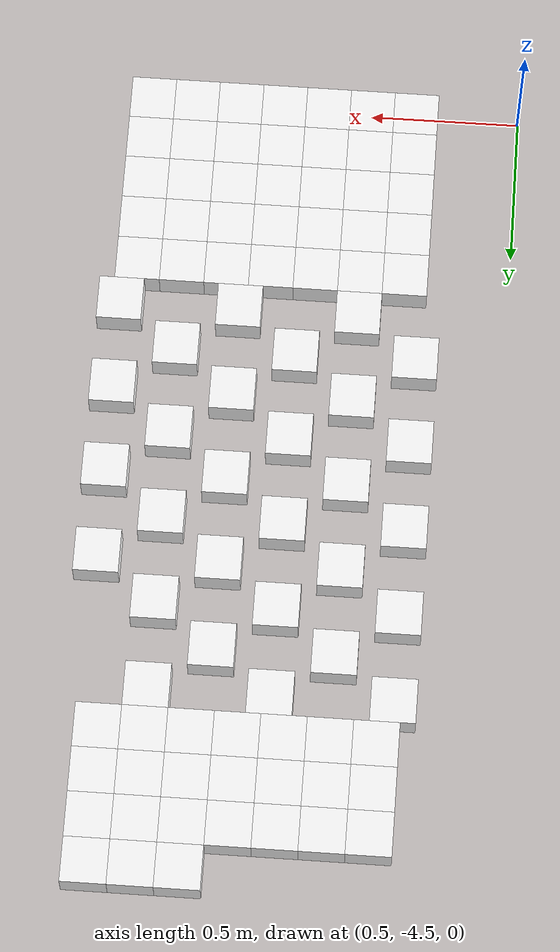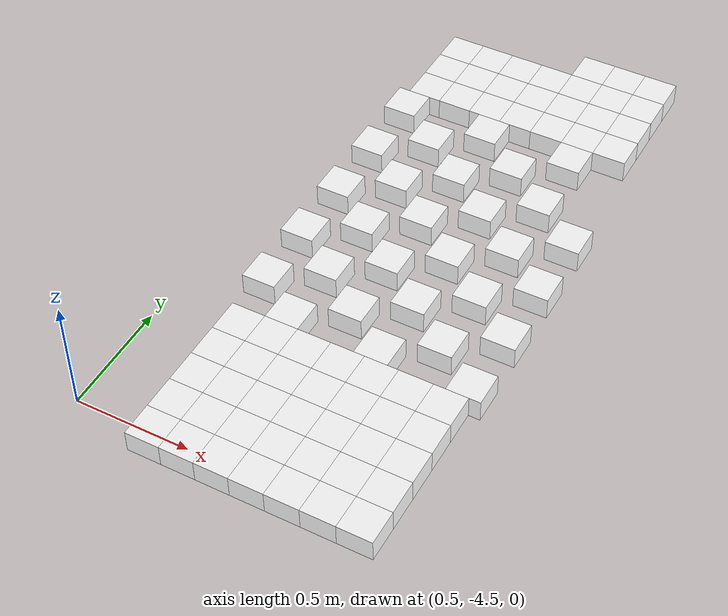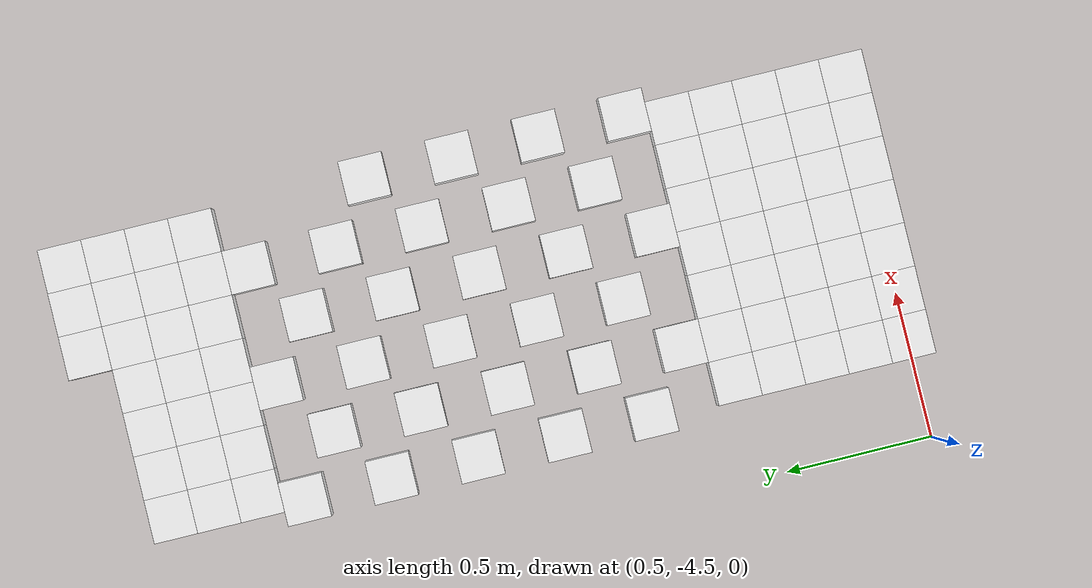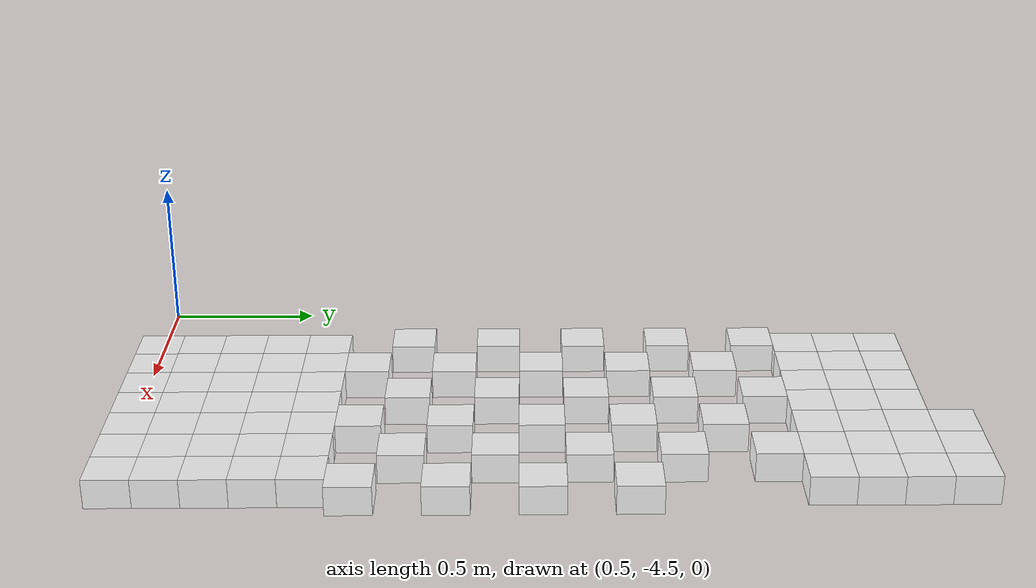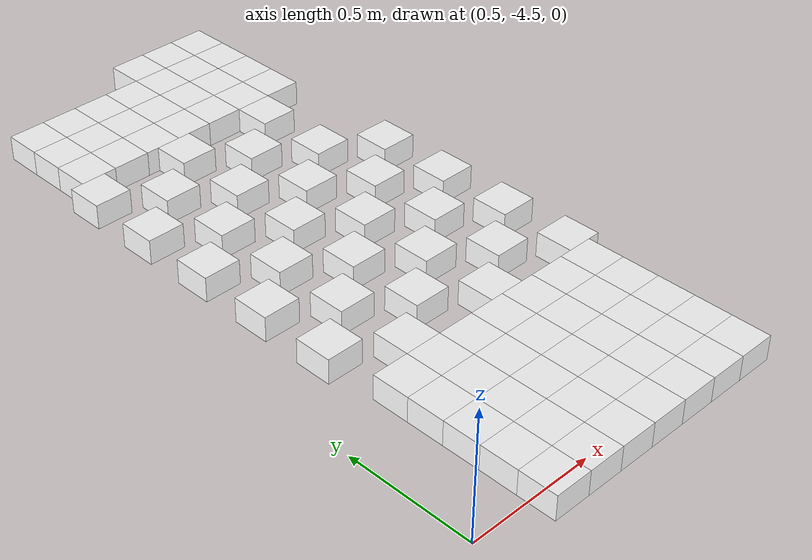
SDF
<sdf version="1.7">
 <world name="default">
  <include><uri>model://sun</uri></include>
  <model name="static_environment">
   <static>true</static>
   <link name="region_397">
    <pose>0.8497730887368893 -1.9502535840012074 0.0 0.0 0.0 4.7123</pose>
    <collision name="region_397_collision">
     <geometry><box><size>0.15 0.15 0.1</size></box></geometry>
     <surface><friction><ode><mu>1.0</mu><mu2>1.0</mu2></ode></friction></surface>
    </collision>
    <visual name="region_397_visual">
     <geometry><box><size>0.15 0.15 0.1</size></box></geometry>
     <material><ambient>1.0 1.0 1.0 1.0</ambient><diffuse>1.0 1.0 1.0 1.0</diffuse></material>
    </visual>
   </link>
   <link name="region_398">
    <pose>0.8497597416792035 -2.100253583407394 0.0 0.0 0.0 4.7123</pose>
    <collision name="region_398_collision">
     <geometry><box><size>0.15 0.15 0.1</size></box></geometry>
     <surface><friction><ode><mu>1.0</mu><mu2>1.0</mu2></ode></friction></surface>
    </collision>
    <visual name="region_398_visual">
     <geometry><box><size>0.15 0.15 0.1</size></box></geometry>
     <material><ambient>1.0 1.0 1.0 1.0</ambient><diffuse>1.0 1.0 1.0 1.0</diffuse></material>
    </visual>
   </link>
   <link name="region_399">
    <pose>0.8497463946215174 -2.250253582813581 0.0 0.0 0.0 4.7123</pose>
    <collision name="region_399_collision">
     <geometry><box><size>0.15 0.15 0.1</size></box></geometry>
     <surface><friction><ode><mu>1.0</mu><mu2>1.0</mu2></ode></friction></surface>
    </collision>
    <visual name="region_399_visual">
     <geometry><box><size>0.15 0.15 0.1</size></box></geometry>
     <material><ambient>1.0 1.0 1.0 1.0</ambient><diffuse>1.0 1.0 1.0 1.0</diffuse></material>
    </visual>
   </link>
   <link name="region_417">
    <pose>0.9997730881430762 -1.9502669310588931 0.0 0.0 0.0 4.7123</pose>
    <collision name="region_417_collision">
     <geometry><box><size>0.15 0.15 0.1</size></box></geometry>
     <surface><friction><ode><mu>1.0</mu><mu2>1.0</mu2></ode></friction></surface>
    </collision>
    <visual name="region_417_visual">
     <geometry><box><size>0.15 0.15 0.1</size></box></geometry>
     <material><ambient>1.0 1.0 1.0 1.0</ambient><diffuse>1.0 1.0 1.0 1.0</diffuse></material>
    </visual>
   </link>
   <link name="region_418">
    <pose>0.9997597410853905 -2.1002669304650796 0.0 0.0 0.0 4.7123</pose>
    <collision name="region_418_collision">
     <geometry><box><size>0.15 0.15 0.1</size></box></geometry>
     <surface><friction><ode><mu>1.0</mu><mu2>1.0</mu2></ode></friction></surface>
    </collision>
    <visual name="region_418_visual">
     <geometry><box><size>0.15 0.15 0.1</size></box></geometry>
     <material><ambient>1.0 1.0 1.0 1.0</ambient><diffuse>1.0 1.0 1.0 1.0</diffuse></material>
    </visual>
   </link>
   <link name="region_419">
    <pose>0.9997463940277043 -2.2502669298712665 0.0 0.0 0.0 4.7123</pose>
    <collision name="region_419_collision">
     <geometry><box><size>0.15 0.15 0.1</size></box></geometry>
     <surface><friction><ode><mu>1.0</mu><mu2>1.0</mu2></ode></friction></surface>
    </collision>
    <visual name="region_419_visual">
     <geometry><box><size>0.15 0.15 0.1</size></box></geometry>
     <material><ambient>1.0 1.0 1.0 1.0</ambient><diffuse>1.0 1.0 1.0 1.0</diffuse></material>
    </visual>
   </link>
   <link name="region_437">
    <pose>1.1497730875492627 -1.950280278116579 0.0 0.0 0.0 4.7123</pose>
    <collision name="region_437_collision">
     <geometry><box><size>0.15 0.15 0.1</size></box></geometry>
     <surface><friction><ode><mu>1.0</mu><mu2>1.0</mu2></ode></friction></surface>
    </collision>
    <visual name="region_437_visual">
     <geometry><box><size>0.15 0.15 0.1</size></box></geometry>
     <material><ambient>1.0 1.0 1.0 1.0</ambient><diffuse>1.0 1.0 1.0 1.0</diffuse></material>
    </visual>
   </link>
   <link name="region_438">
    <pose>1.149759740491577 -2.1002802775227654 0.0 0.0 0.0 4.7123</pose>
    <collision name="region_438_collision">
     <geometry><box><size>0.15 0.15 0.1</size></box></geometry>
     <surface><friction><ode><mu>1.0</mu><mu2>1.0</mu2></ode></friction></surface>
    </collision>
    <visual name="region_438_visual">
     <geometry><box><size>0.15 0.15 0.1</size></box></geometry>
     <material><ambient>1.0 1.0 1.0 1.0</ambient><diffuse>1.0 1.0 1.0 1.0</diffuse></material>
    </visual>
   </link>
   <link name="region_439">
    <pose>1.1497463934338907 -2.2502802769289523 0.0 0.0 0.0 4.7123</pose>
    <collision name="region_439_collision">
     <geometry><box><size>0.15 0.15 0.1</size></box></geometry>
     <surface><friction><ode><mu>1.0</mu><mu2>1.0</mu2></ode></friction></surface>
    </collision>
    <visual name="region_439_visual">
     <geometry><box><size>0.15 0.15 0.1</size></box></geometry>
     <material><ambient>1.0 1.0 1.0 1.0</ambient><diffuse>1.0 1.0 1.0 1.0</diffuse></material>
    </visual>
   </link>
   <link name="region_457">
    <pose>1.2997730869554496 -1.950293625174265 0.0 0.0 0.0 4.7123</pose>
    <collision name="region_457_collision">
     <geometry><box><size>0.15 0.15 0.1</size></box></geometry>
     <surface><friction><ode><mu>1.0</mu><mu2>1.0</mu2></ode></friction></surface>
    </collision>
    <visual name="region_457_visual">
     <geometry><box><size>0.15 0.15 0.1</size></box></geometry>
     <material><ambient>1.0 1.0 1.0 1.0</ambient><diffuse>1.0 1.0 1.0 1.0</diffuse></material>
    </visual>
   </link>
   <link name="region_458">
    <pose>1.2997597398977638 -2.1002936245804515 0.0 0.0 0.0 4.7123</pose>
    <collision name="region_458_collision">
     <geometry><box><size>0.15 0.15 0.1</size></box></geometry>
     <surface><friction><ode><mu>1.0</mu><mu2>1.0</mu2></ode></friction></surface>
    </collision>
    <visual name="region_458_visual">
     <geometry><box><size>0.15 0.15 0.1</size></box></geometry>
     <material><ambient>1.0 1.0 1.0 1.0</ambient><diffuse>1.0 1.0 1.0 1.0</diffuse></material>
    </visual>
   </link>
   <link name="region_459">
    <pose>1.2997463928400776 -2.2502936239866385 0.0 0.0 0.0 4.7123</pose>
    <collision name="region_459_collision">
     <geometry><box><size>0.15 0.15 0.1</size></box></geometry>
     <surface><friction><ode><mu>1.0</mu><mu2>1.0</mu2></ode></friction></surface>
    </collision>
    <visual name="region_459_visual">
     <geometry><box><size>0.15 0.15 0.1</size></box></geometry>
     <material><ambient>1.0 1.0 1.0 1.0</ambient><diffuse>1.0 1.0 1.0 1.0</diffuse></material>
    </visual>
   </link>
   <link name="region_476">
    <pose>1.4497864334193218 -1.800306972825764 0.0 0.0 0.0 4.7123</pose>
    <collision name="region_476_collision">
     <geometry><box><size>0.15 0.15 0.1</size></box></geometry>
     <surface><friction><ode><mu>1.0</mu><mu2>1.0</mu2></ode></friction></surface>
    </collision>
    <visual name="region_476_visual">
     <geometry><box><size>0.15 0.15 0.1</size></box></geometry>
     <material><ambient>1.0 1.0 1.0 1.0</ambient><diffuse>1.0 1.0 1.0 1.0</diffuse></material>
    </visual>
   </link>
   <link name="region_477">
    <pose>1.449773086361636 -1.9503069722319508 0.0 0.0 0.0 4.7123</pose>
    <collision name="region_477_collision">
     <geometry><box><size>0.15 0.15 0.1</size></box></geometry>
     <surface><friction><ode><mu>1.0</mu><mu2>1.0</mu2></ode></friction></surface>
    </collision>
    <visual name="region_477_visual">
     <geometry><box><size>0.15 0.15 0.1</size></box></geometry>
     <material><ambient>1.0 1.0 1.0 1.0</ambient><diffuse>1.0 1.0 1.0 1.0</diffuse></material>
    </visual>
   </link>
   <link name="region_478">
    <pose>1.4497597393039503 -2.1003069716381373 0.0 0.0 0.0 4.7123</pose>
    <collision name="region_478_collision">
     <geometry><box><size>0.15 0.15 0.1</size></box></geometry>
     <surface><friction><ode><mu>1.0</mu><mu2>1.0</mu2></ode></friction></surface>
    </collision>
    <visual name="region_478_visual">
     <geometry><box><size>0.15 0.15 0.1</size></box></geometry>
     <material><ambient>1.0 1.0 1.0 1.0</ambient><diffuse>1.0 1.0 1.0 1.0</diffuse></material>
    </visual>
   </link>
   <link name="region_479">
    <pose>1.4497463922462641 -2.250306971044324 0.0 0.0 0.0 4.7123</pose>
    <collision name="region_479_collision">
     <geometry><box><size>0.15 0.15 0.1</size></box></geometry>
     <surface><friction><ode><mu>1.0</mu><mu2>1.0</mu2></ode></friction></surface>
    </collision>
    <visual name="region_479_visual">
     <geometry><box><size>0.15 0.15 0.1</size></box></geometry>
     <material><ambient>1.0 1.0 1.0 1.0</ambient><diffuse>1.0 1.0 1.0 1.0</diffuse></material>
    </visual>
   </link>
   <link name="region_496">
    <pose>1.5997864328255087 -1.8003203198834496 0.0 0.0 0.0 4.7123</pose>
    <collision name="region_496_collision">
     <geometry><box><size>0.15 0.15 0.1</size></box></geometry>
     <surface><friction><ode><mu>1.0</mu><mu2>1.0</mu2></ode></friction></surface>
    </collision>
    <visual name="region_496_visual">
     <geometry><box><size>0.15 0.15 0.1</size></box></geometry>
     <material><ambient>1.0 1.0 1.0 1.0</ambient><diffuse>1.0 1.0 1.0 1.0</diffuse></material>
    </visual>
   </link>
   <link name="region_497">
    <pose>1.599773085767823 -1.9503203192896366 0.0 0.0 0.0 4.7123</pose>
    <collision name="region_497_collision">
     <geometry><box><size>0.15 0.15 0.1</size></box></geometry>
     <surface><friction><ode><mu>1.0</mu><mu2>1.0</mu2></ode></friction></surface>
    </collision>
    <visual name="region_497_visual">
     <geometry><box><size>0.15 0.15 0.1</size></box></geometry>
     <material><ambient>1.0 1.0 1.0 1.0</ambient><diffuse>1.0 1.0 1.0 1.0</diffuse></material>
    </visual>
   </link>
   <link name="region_498">
    <pose>1.5997597387101372 -2.100320318695823 0.0 0.0 0.0 4.7123</pose>
    <collision name="region_498_collision">
     <geometry><box><size>0.15 0.15 0.1</size></box></geometry>
     <surface><friction><ode><mu>1.0</mu><mu2>1.0</mu2></ode></friction></surface>
    </collision>
    <visual name="region_498_visual">
     <geometry><box><size>0.15 0.15 0.1</size></box></geometry>
     <material><ambient>1.0 1.0 1.0 1.0</ambient><diffuse>1.0 1.0 1.0 1.0</diffuse></material>
    </visual>
   </link>
   <link name="region_499">
    <pose>1.599746391652451 -2.25032031810201 0.0 0.0 0.0 4.7123</pose>
    <collision name="region_499_collision">
     <geometry><box><size>0.15 0.15 0.1</size></box></geometry>
     <surface><friction><ode><mu>1.0</mu><mu2>1.0</mu2></ode></friction></surface>
    </collision>
    <visual name="region_499_visual">
     <geometry><box><size>0.15 0.15 0.1</size></box></geometry>
     <material><ambient>1.0 1.0 1.0 1.0</ambient><diffuse>1.0 1.0 1.0 1.0</diffuse></material>
    </visual>
   </link>
   <link name="region_516">
    <pose>1.7497864322316956 -1.8003336669411358 0.0 0.0 0.0 4.7123</pose>
    <collision name="region_516_collision">
     <geometry><box><size>0.15 0.15 0.1</size></box></geometry>
     <surface><friction><ode><mu>1.0</mu><mu2>1.0</mu2></ode></friction></surface>
    </collision>
    <visual name="region_516_visual">
     <geometry><box><size>0.15 0.15 0.1</size></box></geometry>
     <material><ambient>1.0 1.0 1.0 1.0</ambient><diffuse>1.0 1.0 1.0 1.0</diffuse></material>
    </visual>
   </link>
   <link name="region_517">
    <pose>1.7497730851740099 -1.9503336663473227 0.0 0.0 0.0 4.7123</pose>
    <collision name="region_517_collision">
     <geometry><box><size>0.15 0.15 0.1</size></box></geometry>
     <surface><friction><ode><mu>1.0</mu><mu2>1.0</mu2></ode></friction></surface>
    </collision>
    <visual name="region_517_visual">
     <geometry><box><size>0.15 0.15 0.1</size></box></geometry>
     <material><ambient>1.0 1.0 1.0 1.0</ambient><diffuse>1.0 1.0 1.0 1.0</diffuse></material>
    </visual>
   </link>
   <link name="region_518">
    <pose>1.7497597381163241 -2.100333665753509 0.0 0.0 0.0 4.7123</pose>
    <collision name="region_518_collision">
     <geometry><box><size>0.15 0.15 0.1</size></box></geometry>
     <surface><friction><ode><mu>1.0</mu><mu2>1.0</mu2></ode></friction></surface>
    </collision>
    <visual name="region_518_visual">
     <geometry><box><size>0.15 0.15 0.1</size></box></geometry>
     <material><ambient>1.0 1.0 1.0 1.0</ambient><diffuse>1.0 1.0 1.0 1.0</diffuse></material>
    </visual>
   </link>
   <link name="region_519">
    <pose>1.749746391058638 -2.250333665159696 0.0 0.0 0.0 4.7123</pose>
    <collision name="region_519_collision">
     <geometry><box><size>0.15 0.15 0.1</size></box></geometry>
     <surface><friction><ode><mu>1.0</mu><mu2>1.0</mu2></ode></friction></surface>
    </collision>
    <visual name="region_519_visual">
     <geometry><box><size>0.15 0.15 0.1</size></box></geometry>
     <material><ambient>1.0 1.0 1.0 1.0</ambient><diffuse>1.0 1.0 1.0 1.0</diffuse></material>
    </visual>
   </link>
   <link name="region_870">
    <pose>0.7997330477617703 -2.4002491332005396 0.0 0.0 0.0 4.7123</pose>
    <collision name="region_870_collision">
     <geometry><box><size>0.15 0.15 0.1</size></box></geometry>
     <surface><friction><ode><mu>1.0</mu><mu2>1.0</mu2></ode></friction></surface>
    </collision>
    <visual name="region_870_visual">
     <geometry><box><size>0.15 0.15 0.1</size></box></geometry>
     <material><ambient>1.0 1.0 1.0 1.0</ambient><diffuse>1.0 1.0 1.0 1.0</diffuse></material>
    </visual>
   </link>
   <link name="region_871">
    <pose>0.7997063536463984 -2.7002491320129134 0.0 0.0 0.0 4.7123</pose>
    <collision name="region_871_collision">
     <geometry><box><size>0.15 0.15 0.1</size></box></geometry>
     <surface><friction><ode><mu>1.0</mu><mu2>1.0</mu2></ode></friction></surface>
    </collision>
    <visual name="region_871_visual">
     <geometry><box><size>0.15 0.15 0.1</size></box></geometry>
     <material><ambient>1.0 1.0 1.0 1.0</ambient><diffuse>1.0 1.0 1.0 1.0</diffuse></material>
    </visual>
   </link>
   <link name="region_872">
    <pose>0.7996796595310269 -3.0002491308252868 0.0 0.0 0.0 4.7123</pose>
    <collision name="region_872_collision">
     <geometry><box><size>0.15 0.15 0.1</size></box></geometry>
     <surface><friction><ode><mu>1.0</mu><mu2>1.0</mu2></ode></friction></surface>
    </collision>
    <visual name="region_872_visual">
     <geometry><box><size>0.15 0.15 0.1</size></box></geometry>
     <material><ambient>1.0 1.0 1.0 1.0</ambient><diffuse>1.0 1.0 1.0 1.0</diffuse></material>
    </visual>
   </link>
   <link name="region_873">
    <pose>0.799652965415655 -3.30024912963766 0.0 0.0 0.0 4.7123</pose>
    <collision name="region_873_collision">
     <geometry><box><size>0.15 0.15 0.1</size></box></geometry>
     <surface><friction><ode><mu>1.0</mu><mu2>1.0</mu2></ode></friction></surface>
    </collision>
    <visual name="region_873_visual">
     <geometry><box><size>0.15 0.15 0.1</size></box></geometry>
     <material><ambient>1.0 1.0 1.0 1.0</ambient><diffuse>1.0 1.0 1.0 1.0</diffuse></material>
    </visual>
   </link>
   <link name="region_874">
    <pose>0.7996262713002835 -3.600249128450035 0.0 0.0 0.0 4.7123</pose>
    <collision name="region_874_collision">
     <geometry><box><size>0.15 0.15 0.1</size></box></geometry>
     <surface><friction><ode><mu>1.0</mu><mu2>1.0</mu2></ode></friction></surface>
    </collision>
    <visual name="region_874_visual">
     <geometry><box><size>0.15 0.15 0.1</size></box></geometry>
     <material><ambient>1.0 1.0 1.0 1.0</ambient><diffuse>1.0 1.0 1.0 1.0</diffuse></material>
    </visual>
   </link>
   <link name="region_875">
    <pose>0.9997196999123337 -2.550266928683641 0.0 0.0 0.0 4.7123</pose>
    <collision name="region_875_collision">
     <geometry><box><size>0.15 0.15 0.1</size></box></geometry>
     <surface><friction><ode><mu>1.0</mu><mu2>1.0</mu2></ode></friction></surface>
    </collision>
    <visual name="region_875_visual">
     <geometry><box><size>0.15 0.15 0.1</size></box></geometry>
     <material><ambient>1.0 1.0 1.0 1.0</ambient><diffuse>1.0 1.0 1.0 1.0</diffuse></material>
    </visual>
   </link>
   <link name="region_876">
    <pose>0.9996930057969617 -2.850266927496014 0.0 0.0 0.0 4.7123</pose>
    <collision name="region_876_collision">
     <geometry><box><size>0.15 0.15 0.1</size></box></geometry>
     <surface><friction><ode><mu>1.0</mu><mu2>1.0</mu2></ode></friction></surface>
    </collision>
    <visual name="region_876_visual">
     <geometry><box><size>0.15 0.15 0.1</size></box></geometry>
     <material><ambient>1.0 1.0 1.0 1.0</ambient><diffuse>1.0 1.0 1.0 1.0</diffuse></material>
    </visual>
   </link>
   <link name="region_877">
    <pose>0.9996663116815898 -3.150266926308388 0.0 0.0 0.0 4.7123</pose>
    <collision name="region_877_collision">
     <geometry><box><size>0.15 0.15 0.1</size></box></geometry>
     <surface><friction><ode><mu>1.0</mu><mu2>1.0</mu2></ode></friction></surface>
    </collision>
    <visual name="region_877_visual">
     <geometry><box><size>0.15 0.15 0.1</size></box></geometry>
     <material><ambient>1.0 1.0 1.0 1.0</ambient><diffuse>1.0 1.0 1.0 1.0</diffuse></material>
    </visual>
   </link>
   <link name="region_878">
    <pose>0.9996396175662183 -3.450266925120762 0.0 0.0 0.0 4.7123</pose>
    <collision name="region_878_collision">
     <geometry><box><size>0.15 0.15 0.1</size></box></geometry>
     <surface><friction><ode><mu>1.0</mu><mu2>1.0</mu2></ode></friction></surface>
    </collision>
    <visual name="region_878_visual">
     <geometry><box><size>0.15 0.15 0.1</size></box></geometry>
     <material><ambient>1.0 1.0 1.0 1.0</ambient><diffuse>1.0 1.0 1.0 1.0</diffuse></material>
    </visual>
   </link>
   <link name="region_879">
    <pose>0.9996129234508464 -3.7502669239331365 0.0 0.0 0.0 4.7123</pose>
    <collision name="region_879_collision">
     <geometry><box><size>0.15 0.15 0.1</size></box></geometry>
     <surface><friction><ode><mu>1.0</mu><mu2>1.0</mu2></ode></friction></surface>
    </collision>
    <visual name="region_879_visual">
     <geometry><box><size>0.15 0.15 0.1</size></box></geometry>
     <material><ambient>1.0 1.0 1.0 1.0</ambient><diffuse>1.0 1.0 1.0 1.0</diffuse></material>
    </visual>
   </link>
   <link name="region_880">
    <pose>1.199733046178269 -2.400284725354368 0.0 0.0 0.0 4.7123</pose>
    <collision name="region_880_collision">
     <geometry><box><size>0.15 0.15 0.1</size></box></geometry>
     <surface><friction><ode><mu>1.0</mu><mu2>1.0</mu2></ode></friction></surface>
    </collision>
    <visual name="region_880_visual">
     <geometry><box><size>0.15 0.15 0.1</size></box></geometry>
     <material><ambient>1.0 1.0 1.0 1.0</ambient><diffuse>1.0 1.0 1.0 1.0</diffuse></material>
    </visual>
   </link>
   <link name="region_881">
    <pose>1.199706352062897 -2.700284724166742 0.0 0.0 0.0 4.7123</pose>
    <collision name="region_881_collision">
     <geometry><box><size>0.15 0.15 0.1</size></box></geometry>
     <surface><friction><ode><mu>1.0</mu><mu2>1.0</mu2></ode></friction></surface>
    </collision>
    <visual name="region_881_visual">
     <geometry><box><size>0.15 0.15 0.1</size></box></geometry>
     <material><ambient>1.0 1.0 1.0 1.0</ambient><diffuse>1.0 1.0 1.0 1.0</diffuse></material>
    </visual>
   </link>
   <link name="region_882">
    <pose>1.1996796579475255 -3.0002847229791154 0.0 0.0 0.0 4.7123</pose>
    <collision name="region_882_collision">
     <geometry><box><size>0.15 0.15 0.1</size></box></geometry>
     <surface><friction><ode><mu>1.0</mu><mu2>1.0</mu2></ode></friction></surface>
    </collision>
    <visual name="region_882_visual">
     <geometry><box><size>0.15 0.15 0.1</size></box></geometry>
     <material><ambient>1.0 1.0 1.0 1.0</ambient><diffuse>1.0 1.0 1.0 1.0</diffuse></material>
    </visual>
   </link>
   <link name="region_883">
    <pose>1.1996529638321536 -3.300284721791489 0.0 0.0 0.0 4.7123</pose>
    <collision name="region_883_collision">
     <geometry><box><size>0.15 0.15 0.1</size></box></geometry>
     <surface><friction><ode><mu>1.0</mu><mu2>1.0</mu2></ode></friction></surface>
    </collision>
    <visual name="region_883_visual">
     <geometry><box><size>0.15 0.15 0.1</size></box></geometry>
     <material><ambient>1.0 1.0 1.0 1.0</ambient><diffuse>1.0 1.0 1.0 1.0</diffuse></material>
    </visual>
   </link>
   <link name="region_884">
    <pose>1.199626269716782 -3.6002847206038635 0.0 0.0 0.0 4.7123</pose>
    <collision name="region_884_collision">
     <geometry><box><size>0.15 0.15 0.1</size></box></geometry>
     <surface><friction><ode><mu>1.0</mu><mu2>1.0</mu2></ode></friction></surface>
    </collision>
    <visual name="region_884_visual">
     <geometry><box><size>0.15 0.15 0.1</size></box></geometry>
     <material><ambient>1.0 1.0 1.0 1.0</ambient><diffuse>1.0 1.0 1.0 1.0</diffuse></material>
    </visual>
   </link>
   <link name="region_885">
    <pose>1.3997196983288323 -2.55030252083747 0.0 0.0 0.0 4.7123</pose>
    <collision name="region_885_collision">
     <geometry><box><size>0.15 0.15 0.1</size></box></geometry>
     <surface><friction><ode><mu>1.0</mu><mu2>1.0</mu2></ode></friction></surface>
    </collision>
    <visual name="region_885_visual">
     <geometry><box><size>0.15 0.15 0.1</size></box></geometry>
     <material><ambient>1.0 1.0 1.0 1.0</ambient><diffuse>1.0 1.0 1.0 1.0</diffuse></material>
    </visual>
   </link>
   <link name="region_886">
    <pose>1.3996930042134603 -2.8503025196498433 0.0 0.0 0.0 4.7123</pose>
    <collision name="region_886_collision">
     <geometry><box><size>0.15 0.15 0.1</size></box></geometry>
     <surface><friction><ode><mu>1.0</mu><mu2>1.0</mu2></ode></friction></surface>
    </collision>
    <visual name="region_886_visual">
     <geometry><box><size>0.15 0.15 0.1</size></box></geometry>
     <material><ambient>1.0 1.0 1.0 1.0</ambient><diffuse>1.0 1.0 1.0 1.0</diffuse></material>
    </visual>
   </link>
   <link name="region_887">
    <pose>1.3996663100980884 -3.150302518462217 0.0 0.0 0.0 4.7123</pose>
    <collision name="region_887_collision">
     <geometry><box><size>0.15 0.15 0.1</size></box></geometry>
     <surface><friction><ode><mu>1.0</mu><mu2>1.0</mu2></ode></friction></surface>
    </collision>
    <visual name="region_887_visual">
     <geometry><box><size>0.15 0.15 0.1</size></box></geometry>
     <material><ambient>1.0 1.0 1.0 1.0</ambient><diffuse>1.0 1.0 1.0 1.0</diffuse></material>
    </visual>
   </link>
   <link name="region_888">
    <pose>1.399639615982717 -3.4503025172745905 0.0 0.0 0.0 4.7123</pose>
    <collision name="region_888_collision">
     <geometry><box><size>0.15 0.15 0.1</size></box></geometry>
     <surface><friction><ode><mu>1.0</mu><mu2>1.0</mu2></ode></friction></surface>
    </collision>
    <visual name="region_888_visual">
     <geometry><box><size>0.15 0.15 0.1</size></box></geometry>
     <material><ambient>1.0 1.0 1.0 1.0</ambient><diffuse>1.0 1.0 1.0 1.0</diffuse></material>
    </visual>
   </link>
   <link name="region_889">
    <pose>1.399612921867345 -3.750302516086965 0.0 0.0 0.0 4.7123</pose>
    <collision name="region_889_collision">
     <geometry><box><size>0.15 0.15 0.1</size></box></geometry>
     <surface><friction><ode><mu>1.0</mu><mu2>1.0</mu2></ode></friction></surface>
    </collision>
    <visual name="region_889_visual">
     <geometry><box><size>0.15 0.15 0.1</size></box></geometry>
     <material><ambient>1.0 1.0 1.0 1.0</ambient><diffuse>1.0 1.0 1.0 1.0</diffuse></material>
    </visual>
   </link>
   <link name="region_890">
    <pose>1.5997330445947675 -2.4003203175081973 0.0 0.0 0.0 4.7123</pose>
    <collision name="region_890_collision">
     <geometry><box><size>0.15 0.15 0.1</size></box></geometry>
     <surface><friction><ode><mu>1.0</mu><mu2>1.0</mu2></ode></friction></surface>
    </collision>
    <visual name="region_890_visual">
     <geometry><box><size>0.15 0.15 0.1</size></box></geometry>
     <material><ambient>1.0 1.0 1.0 1.0</ambient><diffuse>1.0 1.0 1.0 1.0</diffuse></material>
    </visual>
   </link>
   <link name="region_891">
    <pose>1.5997063504793956 -2.700320316320571 0.0 0.0 0.0 4.7123</pose>
    <collision name="region_891_collision">
     <geometry><box><size>0.15 0.15 0.1</size></box></geometry>
     <surface><friction><ode><mu>1.0</mu><mu2>1.0</mu2></ode></friction></surface>
    </collision>
    <visual name="region_891_visual">
     <geometry><box><size>0.15 0.15 0.1</size></box></geometry>
     <material><ambient>1.0 1.0 1.0 1.0</ambient><diffuse>1.0 1.0 1.0 1.0</diffuse></material>
    </visual>
   </link>
   <link name="region_892">
    <pose>1.599679656364024 -3.0003203151329445 0.0 0.0 0.0 4.7123</pose>
    <collision name="region_892_collision">
     <geometry><box><size>0.15 0.15 0.1</size></box></geometry>
     <surface><friction><ode><mu>1.0</mu><mu2>1.0</mu2></ode></friction></surface>
    </collision>
    <visual name="region_892_visual">
     <geometry><box><size>0.15 0.15 0.1</size></box></geometry>
     <material><ambient>1.0 1.0 1.0 1.0</ambient><diffuse>1.0 1.0 1.0 1.0</diffuse></material>
    </visual>
   </link>
   <link name="region_893">
    <pose>1.5996529622486522 -3.300320313945318 0.0 0.0 0.0 4.7123</pose>
    <collision name="region_893_collision">
     <geometry><box><size>0.15 0.15 0.1</size></box></geometry>
     <surface><friction><ode><mu>1.0</mu><mu2>1.0</mu2></ode></friction></surface>
    </collision>
    <visual name="region_893_visual">
     <geometry><box><size>0.15 0.15 0.1</size></box></geometry>
     <material><ambient>1.0 1.0 1.0 1.0</ambient><diffuse>1.0 1.0 1.0 1.0</diffuse></material>
    </visual>
   </link>
   <link name="region_894">
    <pose>1.5996262681332807 -3.600320312757693 0.0 0.0 0.0 4.7123</pose>
    <collision name="region_894_collision">
     <geometry><box><size>0.15 0.15 0.1</size></box></geometry>
     <surface><friction><ode><mu>1.0</mu><mu2>1.0</mu2></ode></friction></surface>
    </collision>
    <visual name="region_894_visual">
     <geometry><box><size>0.15 0.15 0.1</size></box></geometry>
     <material><ambient>1.0 1.0 1.0 1.0</ambient><diffuse>1.0 1.0 1.0 1.0</diffuse></material>
    </visual>
   </link>
   <link name="region_896">
    <pose>1.799693002629959 -2.8503381118036724 0.0 0.0 0.0 4.7123</pose>
    <collision name="region_896_collision">
     <geometry><box><size>0.15 0.15 0.1</size></box></geometry>
     <surface><friction><ode><mu>1.0</mu><mu2>1.0</mu2></ode></friction></surface>
    </collision>
    <visual name="region_896_visual">
     <geometry><box><size>0.15 0.15 0.1</size></box></geometry>
     <material><ambient>1.0 1.0 1.0 1.0</ambient><diffuse>1.0 1.0 1.0 1.0</diffuse></material>
    </visual>
   </link>
   <link name="region_897">
    <pose>1.799666308514587 -3.150338110616046 0.0 0.0 0.0 4.7123</pose>
    <collision name="region_897_collision">
     <geometry><box><size>0.15 0.15 0.1</size></box></geometry>
     <surface><friction><ode><mu>1.0</mu><mu2>1.0</mu2></ode></friction></surface>
    </collision>
    <visual name="region_897_visual">
     <geometry><box><size>0.15 0.15 0.1</size></box></geometry>
     <material><ambient>1.0 1.0 1.0 1.0</ambient><diffuse>1.0 1.0 1.0 1.0</diffuse></material>
    </visual>
   </link>
   <link name="region_898">
    <pose>1.7996396143992155 -3.45033810942842 0.0 0.0 0.0 4.7123</pose>
    <collision name="region_898_collision">
     <geometry><box><size>0.15 0.15 0.1</size></box></geometry>
     <surface><friction><ode><mu>1.0</mu><mu2>1.0</mu2></ode></friction></surface>
    </collision>
    <visual name="region_898_visual">
     <geometry><box><size>0.15 0.15 0.1</size></box></geometry>
     <material><ambient>1.0 1.0 1.0 1.0</ambient><diffuse>1.0 1.0 1.0 1.0</diffuse></material>
    </visual>
   </link>
   <link name="region_899">
    <pose>1.7996129202838436 -3.7503381082407947 0.0 0.0 0.0 4.7123</pose>
    <collision name="region_899_collision">
     <geometry><box><size>0.15 0.15 0.1</size></box></geometry>
     <surface><friction><ode><mu>1.0</mu><mu2>1.0</mu2></ode></friction></surface>
    </collision>
    <visual name="region_899_visual">
     <geometry><box><size>0.15 0.15 0.1</size></box></geometry>
     <material><ambient>1.0 1.0 1.0 1.0</ambient><diffuse>1.0 1.0 1.0 1.0</diffuse></material>
    </visual>
   </link>
   <link name="region_1045">
    <pose>0.8495995769869729 -3.9002535762816364 0.0 0.0 0.0 4.7123</pose>
    <collision name="region_1045_collision">
     <geometry><box><size>0.15 0.15 0.1</size></box></geometry>
     <surface><friction><ode><mu>1.0</mu><mu2>1.0</mu2></ode></friction></surface>
    </collision>
    <visual name="region_1045_visual">
     <geometry><box><size>0.15 0.15 0.1</size></box></geometry>
     <material><ambient>1.0 1.0 1.0 1.0</ambient><diffuse>1.0 1.0 1.0 1.0</diffuse></material>
    </visual>
   </link>
   <link name="region_1046">
    <pose>0.8495862299292871 -4.050253575687824 0.0 0.0 0.0 4.7123</pose>
    <collision name="region_1046_collision">
     <geometry><box><size>0.15 0.15 0.1</size></box></geometry>
     <surface><friction><ode><mu>1.0</mu><mu2>1.0</mu2></ode></friction></surface>
    </collision>
    <visual name="region_1046_visual">
     <geometry><box><size>0.15 0.15 0.1</size></box></geometry>
     <material><ambient>1.0 1.0 1.0 1.0</ambient><diffuse>1.0 1.0 1.0 1.0</diffuse></material>
    </visual>
   </link>
   <link name="region_1047">
    <pose>0.8495728828716009 -4.2002535750940115 0.0 0.0 0.0 4.7123</pose>
    <collision name="region_1047_collision">
     <geometry><box><size>0.15 0.15 0.1</size></box></geometry>
     <surface><friction><ode><mu>1.0</mu><mu2>1.0</mu2></ode></friction></surface>
    </collision>
    <visual name="region_1047_visual">
     <geometry><box><size>0.15 0.15 0.1</size></box></geometry>
     <material><ambient>1.0 1.0 1.0 1.0</ambient><diffuse>1.0 1.0 1.0 1.0</diffuse></material>
    </visual>
   </link>
   <link name="region_1048">
    <pose>0.8495595358139152 -4.350253574500199 0.0 0.0 0.0 4.7123</pose>
    <collision name="region_1048_collision">
     <geometry><box><size>0.15 0.15 0.1</size></box></geometry>
     <surface><friction><ode><mu>1.0</mu><mu2>1.0</mu2></ode></friction></surface>
    </collision>
    <visual name="region_1048_visual">
     <geometry><box><size>0.15 0.15 0.1</size></box></geometry>
     <material><ambient>1.0 1.0 1.0 1.0</ambient><diffuse>1.0 1.0 1.0 1.0</diffuse></material>
    </visual>
   </link>
   <link name="region_1049">
    <pose>0.8495461887562294 -4.500253573906386 0.0 0.0 0.0 4.7123</pose>
    <collision name="region_1049_collision">
     <geometry><box><size>0.15 0.15 0.1</size></box></geometry>
     <surface><friction><ode><mu>1.0</mu><mu2>1.0</mu2></ode></friction></surface>
    </collision>
    <visual name="region_1049_visual">
     <geometry><box><size>0.15 0.15 0.1</size></box></geometry>
     <material><ambient>1.0 1.0 1.0 1.0</ambient><diffuse>1.0 1.0 1.0 1.0</diffuse></material>
    </visual>
   </link>
   <link name="region_1050">
    <pose>0.9995995763931598 -3.900266923339322 0.0 0.0 0.0 4.7123</pose>
    <collision name="region_1050_collision">
     <geometry><box><size>0.15 0.15 0.1</size></box></geometry>
     <surface><friction><ode><mu>1.0</mu><mu2>1.0</mu2></ode></friction></surface>
    </collision>
    <visual name="region_1050_visual">
     <geometry><box><size>0.15 0.15 0.1</size></box></geometry>
     <material><ambient>1.0 1.0 1.0 1.0</ambient><diffuse>1.0 1.0 1.0 1.0</diffuse></material>
    </visual>
   </link>
   <link name="region_1051">
    <pose>0.999586229335474 -4.05026692274551 0.0 0.0 0.0 4.7123</pose>
    <collision name="region_1051_collision">
     <geometry><box><size>0.15 0.15 0.1</size></box></geometry>
     <surface><friction><ode><mu>1.0</mu><mu2>1.0</mu2></ode></friction></surface>
    </collision>
    <visual name="region_1051_visual">
     <geometry><box><size>0.15 0.15 0.1</size></box></geometry>
     <material><ambient>1.0 1.0 1.0 1.0</ambient><diffuse>1.0 1.0 1.0 1.0</diffuse></material>
    </visual>
   </link>
   <link name="region_1052">
    <pose>0.9995728822777878 -4.200266922151697 0.0 0.0 0.0 4.7123</pose>
    <collision name="region_1052_collision">
     <geometry><box><size>0.15 0.15 0.1</size></box></geometry>
     <surface><friction><ode><mu>1.0</mu><mu2>1.0</mu2></ode></friction></surface>
    </collision>
    <visual name="region_1052_visual">
     <geometry><box><size>0.15 0.15 0.1</size></box></geometry>
     <material><ambient>1.0 1.0 1.0 1.0</ambient><diffuse>1.0 1.0 1.0 1.0</diffuse></material>
    </visual>
   </link>
   <link name="region_1053">
    <pose>0.9995595352201021 -4.350266921557885 0.0 0.0 0.0 4.7123</pose>
    <collision name="region_1053_collision">
     <geometry><box><size>0.15 0.15 0.1</size></box></geometry>
     <surface><friction><ode><mu>1.0</mu><mu2>1.0</mu2></ode></friction></surface>
    </collision>
    <visual name="region_1053_visual">
     <geometry><box><size>0.15 0.15 0.1</size></box></geometry>
     <material><ambient>1.0 1.0 1.0 1.0</ambient><diffuse>1.0 1.0 1.0 1.0</diffuse></material>
    </visual>
   </link>
   <link name="region_1054">
    <pose>0.9995461881624164 -4.500266920964072 0.0 0.0 0.0 4.7123</pose>
    <collision name="region_1054_collision">
     <geometry><box><size>0.15 0.15 0.1</size></box></geometry>
     <surface><friction><ode><mu>1.0</mu><mu2>1.0</mu2></ode></friction></surface>
    </collision>
    <visual name="region_1054_visual">
     <geometry><box><size>0.15 0.15 0.1</size></box></geometry>
     <material><ambient>1.0 1.0 1.0 1.0</ambient><diffuse>1.0 1.0 1.0 1.0</diffuse></material>
    </visual>
   </link>
   <link name="region_1055">
    <pose>1.1495995757993462 -3.900280270397008 0.0 0.0 0.0 4.7123</pose>
    <collision name="region_1055_collision">
     <geometry><box><size>0.15 0.15 0.1</size></box></geometry>
     <surface><friction><ode><mu>1.0</mu><mu2>1.0</mu2></ode></friction></surface>
    </collision>
    <visual name="region_1055_visual">
     <geometry><box><size>0.15 0.15 0.1</size></box></geometry>
     <material><ambient>1.0 1.0 1.0 1.0</ambient><diffuse>1.0 1.0 1.0 1.0</diffuse></material>
    </visual>
   </link>
   <link name="region_1056">
    <pose>1.1495862287416605 -4.050280269803196 0.0 0.0 0.0 4.7123</pose>
    <collision name="region_1056_collision">
     <geometry><box><size>0.15 0.15 0.1</size></box></geometry>
     <surface><friction><ode><mu>1.0</mu><mu2>1.0</mu2></ode></friction></surface>
    </collision>
    <visual name="region_1056_visual">
     <geometry><box><size>0.15 0.15 0.1</size></box></geometry>
     <material><ambient>1.0 1.0 1.0 1.0</ambient><diffuse>1.0 1.0 1.0 1.0</diffuse></material>
    </visual>
   </link>
   <link name="region_1057">
    <pose>1.1495728816839743 -4.200280269209383 0.0 0.0 0.0 4.7123</pose>
    <collision name="region_1057_collision">
     <geometry><box><size>0.15 0.15 0.1</size></box></geometry>
     <surface><friction><ode><mu>1.0</mu><mu2>1.0</mu2></ode></friction></surface>
    </collision>
    <visual name="region_1057_visual">
     <geometry><box><size>0.15 0.15 0.1</size></box></geometry>
     <material><ambient>1.0 1.0 1.0 1.0</ambient><diffuse>1.0 1.0 1.0 1.0</diffuse></material>
    </visual>
   </link>
   <link name="region_1058">
    <pose>1.1495595346262886 -4.35028026861557 0.0 0.0 0.0 4.7123</pose>
    <collision name="region_1058_collision">
     <geometry><box><size>0.15 0.15 0.1</size></box></geometry>
     <surface><friction><ode><mu>1.0</mu><mu2>1.0</mu2></ode></friction></surface>
    </collision>
    <visual name="region_1058_visual">
     <geometry><box><size>0.15 0.15 0.1</size></box></geometry>
     <material><ambient>1.0 1.0 1.0 1.0</ambient><diffuse>1.0 1.0 1.0 1.0</diffuse></material>
    </visual>
   </link>
   <link name="region_1059">
    <pose>1.1495461875686028 -4.500280268021758 0.0 0.0 0.0 4.7123</pose>
    <collision name="region_1059_collision">
     <geometry><box><size>0.15 0.15 0.1</size></box></geometry>
     <surface><friction><ode><mu>1.0</mu><mu2>1.0</mu2></ode></friction></surface>
    </collision>
    <visual name="region_1059_visual">
     <geometry><box><size>0.15 0.15 0.1</size></box></geometry>
     <material><ambient>1.0 1.0 1.0 1.0</ambient><diffuse>1.0 1.0 1.0 1.0</diffuse></material>
    </visual>
   </link>
   <link name="region_1060">
    <pose>1.2995995752055332 -3.9002936174546936 0.0 0.0 0.0 4.7123</pose>
    <collision name="region_1060_collision">
     <geometry><box><size>0.15 0.15 0.1</size></box></geometry>
     <surface><friction><ode><mu>1.0</mu><mu2>1.0</mu2></ode></friction></surface>
    </collision>
    <visual name="region_1060_visual">
     <geometry><box><size>0.15 0.15 0.1</size></box></geometry>
     <material><ambient>1.0 1.0 1.0 1.0</ambient><diffuse>1.0 1.0 1.0 1.0</diffuse></material>
    </visual>
   </link>
   <link name="region_1061">
    <pose>1.2995862281478474 -4.050293616860881 0.0 0.0 0.0 4.7123</pose>
    <collision name="region_1061_collision">
     <geometry><box><size>0.15 0.15 0.1</size></box></geometry>
     <surface><friction><ode><mu>1.0</mu><mu2>1.0</mu2></ode></friction></surface>
    </collision>
    <visual name="region_1061_visual">
     <geometry><box><size>0.15 0.15 0.1</size></box></geometry>
     <material><ambient>1.0 1.0 1.0 1.0</ambient><diffuse>1.0 1.0 1.0 1.0</diffuse></material>
    </visual>
   </link>
   <link name="region_1062">
    <pose>1.2995728810901612 -4.200293616267069 0.0 0.0 0.0 4.7123</pose>
    <collision name="region_1062_collision">
     <geometry><box><size>0.15 0.15 0.1</size></box></geometry>
     <surface><friction><ode><mu>1.0</mu><mu2>1.0</mu2></ode></friction></surface>
    </collision>
    <visual name="region_1062_visual">
     <geometry><box><size>0.15 0.15 0.1</size></box></geometry>
     <material><ambient>1.0 1.0 1.0 1.0</ambient><diffuse>1.0 1.0 1.0 1.0</diffuse></material>
    </visual>
   </link>
   <link name="region_1063">
    <pose>1.2995595340324755 -4.350293615673256 0.0 0.0 0.0 4.7123</pose>
    <collision name="region_1063_collision">
     <geometry><box><size>0.15 0.15 0.1</size></box></geometry>
     <surface><friction><ode><mu>1.0</mu><mu2>1.0</mu2></ode></friction></surface>
    </collision>
    <visual name="region_1063_visual">
     <geometry><box><size>0.15 0.15 0.1</size></box></geometry>
     <material><ambient>1.0 1.0 1.0 1.0</ambient><diffuse>1.0 1.0 1.0 1.0</diffuse></material>
    </visual>
   </link>
   <link name="region_1064">
    <pose>1.2995461869747897 -4.5002936150794435 0.0 0.0 0.0 4.7123</pose>
    <collision name="region_1064_collision">
     <geometry><box><size>0.15 0.15 0.1</size></box></geometry>
     <surface><friction><ode><mu>1.0</mu><mu2>1.0</mu2></ode></friction></surface>
    </collision>
    <visual name="region_1064_visual">
     <geometry><box><size>0.15 0.15 0.1</size></box></geometry>
     <material><ambient>1.0 1.0 1.0 1.0</ambient><diffuse>1.0 1.0 1.0 1.0</diffuse></material>
    </visual>
   </link>
   <link name="region_1065">
    <pose>1.4495995746117196 -3.9003069645123793 0.0 0.0 0.0 4.7123</pose>
    <collision name="region_1065_collision">
     <geometry><box><size>0.15 0.15 0.1</size></box></geometry>
     <surface><friction><ode><mu>1.0</mu><mu2>1.0</mu2></ode></friction></surface>
    </collision>
    <visual name="region_1065_visual">
     <geometry><box><size>0.15 0.15 0.1</size></box></geometry>
     <material><ambient>1.0 1.0 1.0 1.0</ambient><diffuse>1.0 1.0 1.0 1.0</diffuse></material>
    </visual>
   </link>
   <link name="region_1066">
    <pose>1.4495862275540339 -4.050306963918567 0.0 0.0 0.0 4.7123</pose>
    <collision name="region_1066_collision">
     <geometry><box><size>0.15 0.15 0.1</size></box></geometry>
     <surface><friction><ode><mu>1.0</mu><mu2>1.0</mu2></ode></friction></surface>
    </collision>
    <visual name="region_1066_visual">
     <geometry><box><size>0.15 0.15 0.1</size></box></geometry>
     <material><ambient>1.0 1.0 1.0 1.0</ambient><diffuse>1.0 1.0 1.0 1.0</diffuse></material>
    </visual>
   </link>
   <link name="region_1067">
    <pose>1.4495728804963477 -4.2003069633247545 0.0 0.0 0.0 4.7123</pose>
    <collision name="region_1067_collision">
     <geometry><box><size>0.15 0.15 0.1</size></box></geometry>
     <surface><friction><ode><mu>1.0</mu><mu2>1.0</mu2></ode></friction></surface>
    </collision>
    <visual name="region_1067_visual">
     <geometry><box><size>0.15 0.15 0.1</size></box></geometry>
     <material><ambient>1.0 1.0 1.0 1.0</ambient><diffuse>1.0 1.0 1.0 1.0</diffuse></material>
    </visual>
   </link>
   <link name="region_1068">
    <pose>1.449559533438662 -4.350306962730942 0.0 0.0 0.0 4.7123</pose>
    <collision name="region_1068_collision">
     <geometry><box><size>0.15 0.15 0.1</size></box></geometry>
     <surface><friction><ode><mu>1.0</mu><mu2>1.0</mu2></ode></friction></surface>
    </collision>
    <visual name="region_1068_visual">
     <geometry><box><size>0.15 0.15 0.1</size></box></geometry>
     <material><ambient>1.0 1.0 1.0 1.0</ambient><diffuse>1.0 1.0 1.0 1.0</diffuse></material>
    </visual>
   </link>
   <link name="region_1069">
    <pose>1.4495461863809762 -4.500306962137129 0.0 0.0 0.0 4.7123</pose>
    <collision name="region_1069_collision">
     <geometry><box><size>0.15 0.15 0.1</size></box></geometry>
     <surface><friction><ode><mu>1.0</mu><mu2>1.0</mu2></ode></friction></surface>
    </collision>
    <visual name="region_1069_visual">
     <geometry><box><size>0.15 0.15 0.1</size></box></geometry>
     <material><ambient>1.0 1.0 1.0 1.0</ambient><diffuse>1.0 1.0 1.0 1.0</diffuse></material>
    </visual>
   </link>
   <link name="region_1070">
    <pose>1.5995995740179065 -3.900320311570066 0.0 0.0 0.0 4.7123</pose>
    <collision name="region_1070_collision">
     <geometry><box><size>0.15 0.15 0.1</size></box></geometry>
     <surface><friction><ode><mu>1.0</mu><mu2>1.0</mu2></ode></friction></surface>
    </collision>
    <visual name="region_1070_visual">
     <geometry><box><size>0.15 0.15 0.1</size></box></geometry>
     <material><ambient>1.0 1.0 1.0 1.0</ambient><diffuse>1.0 1.0 1.0 1.0</diffuse></material>
    </visual>
   </link>
   <link name="region_1071">
    <pose>1.5995862269602208 -4.050320310976254 0.0 0.0 0.0 4.7123</pose>
    <collision name="region_1071_collision">
     <geometry><box><size>0.15 0.15 0.1</size></box></geometry>
     <surface><friction><ode><mu>1.0</mu><mu2>1.0</mu2></ode></friction></surface>
    </collision>
    <visual name="region_1071_visual">
     <geometry><box><size>0.15 0.15 0.1</size></box></geometry>
     <material><ambient>1.0 1.0 1.0 1.0</ambient><diffuse>1.0 1.0 1.0 1.0</diffuse></material>
    </visual>
   </link>
   <link name="region_1072">
    <pose>1.5995728799025346 -4.200320310382441 0.0 0.0 0.0 4.7123</pose>
    <collision name="region_1072_collision">
     <geometry><box><size>0.15 0.15 0.1</size></box></geometry>
     <surface><friction><ode><mu>1.0</mu><mu2>1.0</mu2></ode></friction></surface>
    </collision>
    <visual name="region_1072_visual">
     <geometry><box><size>0.15 0.15 0.1</size></box></geometry>
     <material><ambient>1.0 1.0 1.0 1.0</ambient><diffuse>1.0 1.0 1.0 1.0</diffuse></material>
    </visual>
   </link>
   <link name="region_1073">
    <pose>1.5995595328448489 -4.3503203097886285 0.0 0.0 0.0 4.7123</pose>
    <collision name="region_1073_collision">
     <geometry><box><size>0.15 0.15 0.1</size></box></geometry>
     <surface><friction><ode><mu>1.0</mu><mu2>1.0</mu2></ode></friction></surface>
    </collision>
    <visual name="region_1073_visual">
     <geometry><box><size>0.15 0.15 0.1</size></box></geometry>
     <material><ambient>1.0 1.0 1.0 1.0</ambient><diffuse>1.0 1.0 1.0 1.0</diffuse></material>
    </visual>
   </link>
   <link name="region_1074">
    <pose>1.5995461857871631 -4.500320309194816 0.0 0.0 0.0 4.7123</pose>
    <collision name="region_1074_collision">
     <geometry><box><size>0.15 0.15 0.1</size></box></geometry>
     <surface><friction><ode><mu>1.0</mu><mu2>1.0</mu2></ode></friction></surface>
    </collision>
    <visual name="region_1074_visual">
     <geometry><box><size>0.15 0.15 0.1</size></box></geometry>
     <material><ambient>1.0 1.0 1.0 1.0</ambient><diffuse>1.0 1.0 1.0 1.0</diffuse></material>
    </visual>
   </link>
   <link name="region_1075">
    <pose>1.7495995734240934 -3.9003336586277517 0.0 0.0 0.0 4.7123</pose>
    <collision name="region_1075_collision">
     <geometry><box><size>0.15 0.15 0.1</size></box></geometry>
     <surface><friction><ode><mu>1.0</mu><mu2>1.0</mu2></ode></friction></surface>
    </collision>
    <visual name="region_1075_visual">
     <geometry><box><size>0.15 0.15 0.1</size></box></geometry>
     <material><ambient>1.0 1.0 1.0 1.0</ambient><diffuse>1.0 1.0 1.0 1.0</diffuse></material>
    </visual>
   </link>
   <link name="region_1076">
    <pose>1.7495862263664077 -4.0503336580339395 0.0 0.0 0.0 4.7123</pose>
    <collision name="region_1076_collision">
     <geometry><box><size>0.15 0.15 0.1</size></box></geometry>
     <surface><friction><ode><mu>1.0</mu><mu2>1.0</mu2></ode></friction></surface>
    </collision>
    <visual name="region_1076_visual">
     <geometry><box><size>0.15 0.15 0.1</size></box></geometry>
     <material><ambient>1.0 1.0 1.0 1.0</ambient><diffuse>1.0 1.0 1.0 1.0</diffuse></material>
    </visual>
   </link>
   <link name="region_1077">
    <pose>1.7495728793087215 -4.200333657440127 0.0 0.0 0.0 4.7123</pose>
    <collision name="region_1077_collision">
     <geometry><box><size>0.15 0.15 0.1</size></box></geometry>
     <surface><friction><ode><mu>1.0</mu><mu2>1.0</mu2></ode></friction></surface>
    </collision>
    <visual name="region_1077_visual">
     <geometry><box><size>0.15 0.15 0.1</size></box></geometry>
     <material><ambient>1.0 1.0 1.0 1.0</ambient><diffuse>1.0 1.0 1.0 1.0</diffuse></material>
    </visual>
   </link>
   <link name="region_1078">
    <pose>1.7495595322510358 -4.350333656846314 0.0 0.0 0.0 4.7123</pose>
    <collision name="region_1078_collision">
     <geometry><box><size>0.15 0.15 0.1</size></box></geometry>
     <surface><friction><ode><mu>1.0</mu><mu2>1.0</mu2></ode></friction></surface>
    </collision>
    <visual name="region_1078_visual">
     <geometry><box><size>0.15 0.15 0.1</size></box></geometry>
     <material><ambient>1.0 1.0 1.0 1.0</ambient><diffuse>1.0 1.0 1.0 1.0</diffuse></material>
    </visual>
   </link>
   <link name="region_1079">
    <pose>1.74954618519335 -4.500333656252502 0.0 0.0 0.0 4.7123</pose>
    <collision name="region_1079_collision">
     <geometry><box><size>0.15 0.15 0.1</size></box></geometry>
     <surface><friction><ode><mu>1.0</mu><mu2>1.0</mu2></ode></friction></surface>
    </collision>
    <visual name="region_1079_visual">
     <geometry><box><size>0.15 0.15 0.1</size></box></geometry>
     <material><ambient>1.0 1.0 1.0 1.0</ambient><diffuse>1.0 1.0 1.0 1.0</diffuse></material>
    </visual>
   </link>
  </model>
 </world>
</sdf>
